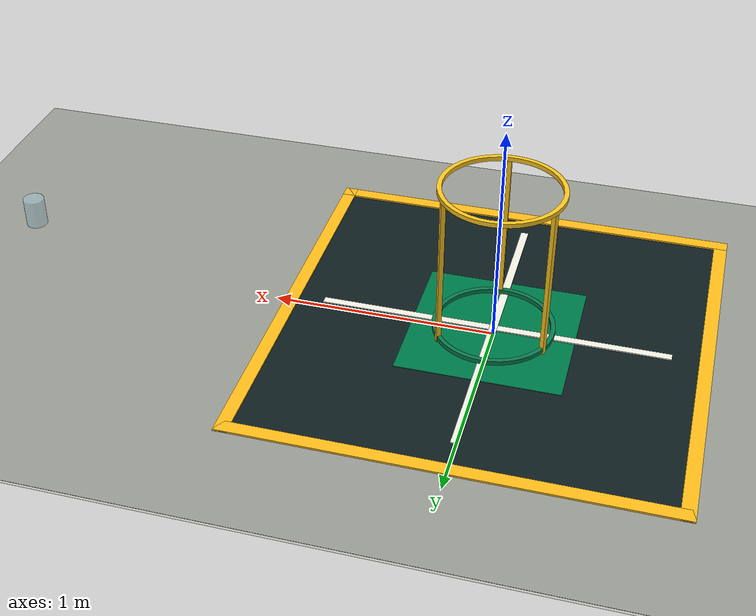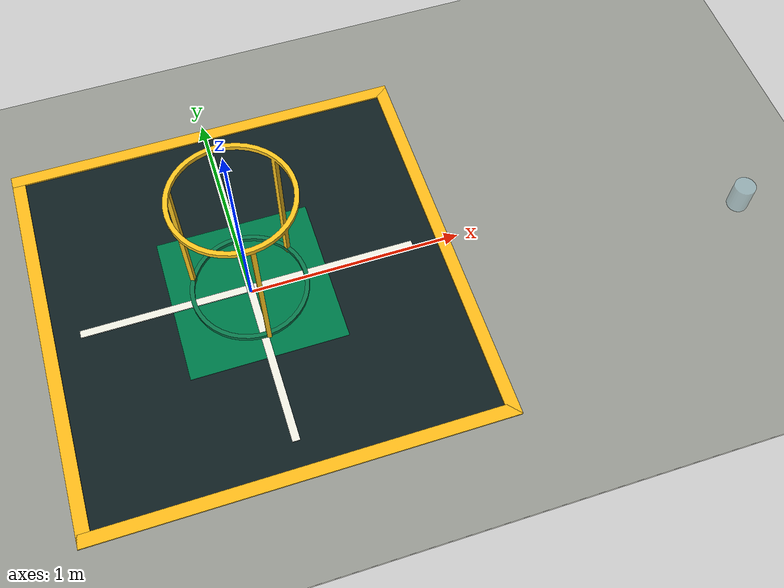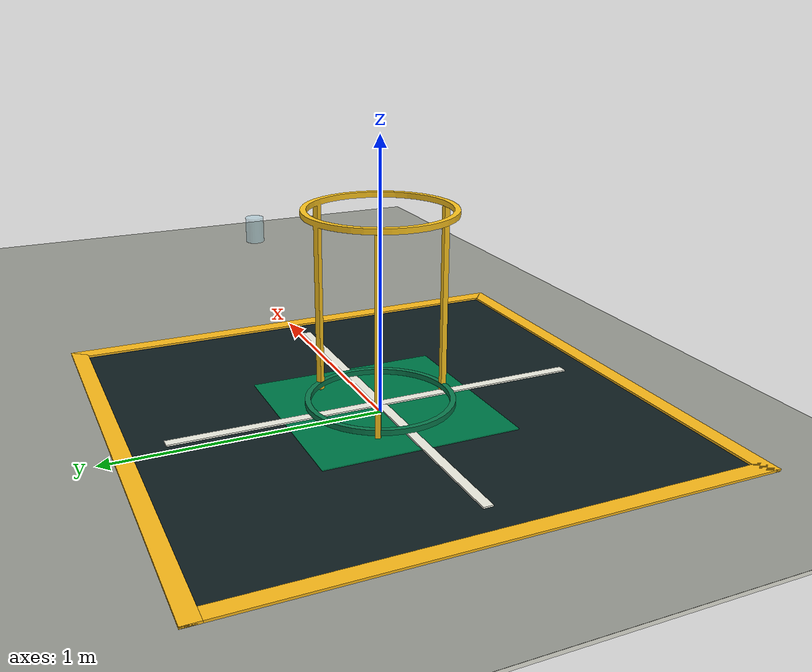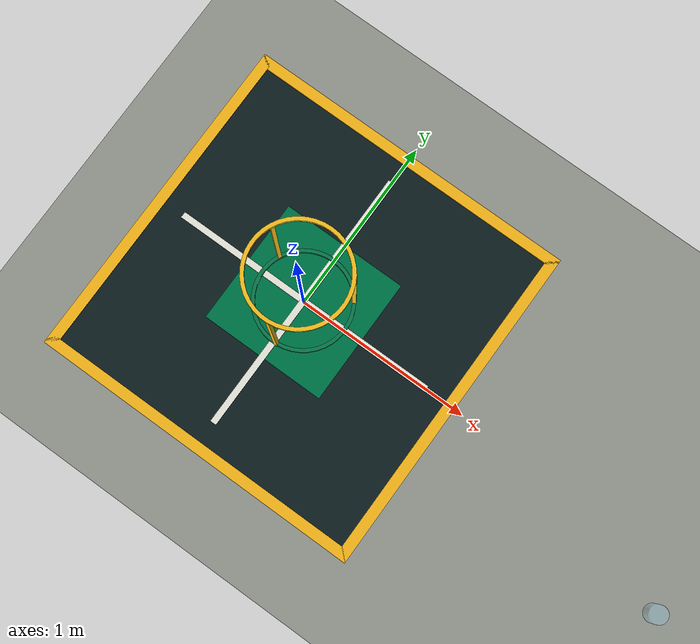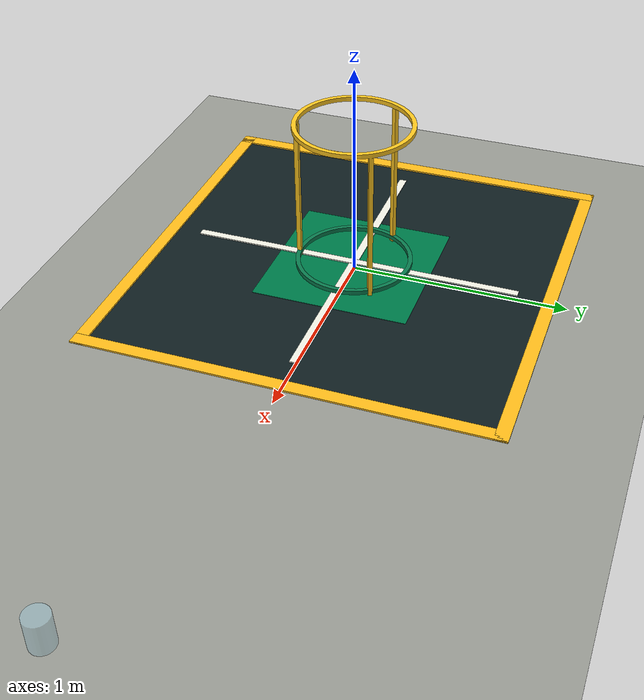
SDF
<sdf version="1.10">
 <world name="laboratory_landingbox_vla_task0">
  <model name="ground_plane">
   <static>true</static>
   <link name="link">
    <collision name="collision">
     <geometry><plane><normal>0 0 1</normal><size>500 500</size></plane></geometry>
     <surface><friction><ode><mu>100</mu><mu2>50</mu2></ode></friction></surface>
    </collision>
    <visual name="visual">
     <geometry><plane><normal>0 0 1</normal><size>500 500</size></plane></geometry>
     <material>
      <ambient>0.74000001 0.74000001 0.699999988 1</ambient>
      <diffuse>0.74000001 0.74000001 0.699999988 1</diffuse>
      <specular>0.0500000007 0.0500000007 0.0500000007 1</specular>
     </material>
    </visual>
    <inertial>
     <mass>1</mass>
     <inertia><ixx>1</ixx><ixy>0</ixy><ixz>0</ixz><iyy>1</iyy><iyz>0</iyz><izz>1</izz></inertia>
    </inertial>
   </link>
  </model>
  <model name="Floor_room">
   <link name="main">
    <pose>0 0 0.01 0 0 0</pose>
    <collision name="main_Collision"><geometry><box><size>28 20 0.001</size></box></geometry></collision>
    <visual name="main_Visual">
     <geometry><box><size>28 20 0.001</size></box></geometry>
     <material>
      <ambient>0.560000002 0.579999983 0.560000002 1</ambient>
      <diffuse>0.600000024 0.610000014 0.579999983 1</diffuse>
      <specular>0.0199999996 0.0199999996 0.0199999996 1</specular>
     </material>
    </visual>
    <inertial>
     <mass>1</mass>
     <inertia><ixx>1</ixx><ixy>0</ixy><ixz>0</ixz><iyy>1</iyy><iyz>0</iyz><izz>1</izz></inertia>
    </inertial>
   </link>
   <static>true</static>
   <pose>0.043797000000000003 -0.01325 0 0 0 0</pose>
  </model>
  <model name="Landing box">
   <static>true</static>
   <link name="base_link">
    <inertial>
     <pose>0 0.0030439999999999998 0.366956 0 0 0</pose>
     <mass>2.1469</mass>
     <inertia>
      <ixx>0.25168299999999999</ixx>
      <ixy>0.0062132300000000001</ixy>
      <ixz>-0.015183</ixz>
      <iyy>0.26891500000000002</iyy>
      <iyz>-0.0079976200000000004</iyz>
      <izz>0.110272</izz>
     </inertia>
    </inertial>
    <collision name="base_link_collision">
     <pose>0 0 0.029999999999999999 0 0 0</pose>
     <geometry><cylinder><length>0.02</length><radius>0.26000000000000001</radius></cylinder></geometry>
    </collision>
    <visual name="base_link_visual">
     <pose>0 0 0.029999999999999999 0 0 0</pose>
     <geometry><mesh><scale>1 1 1</scale><uri>model://landing_box/meshes/base_link.dae</uri></mesh></geometry>
     <material>
      <ambient>0.0199999996 0.239999995 0.159999996 1</ambient>
      <diffuse>0.0299999993 0.479999989 0.300000012 1</diffuse>
      <specular>0.0500000007 0.0500000007 0.0500000007 1</specular>
     </material>
    </visual>
   </link>
   <link name="Link_1">
    <collision name="base_link_fixed_joint_lump__Link_1_collision_1">
     <pose>-0.23516699999999999 0.112679 0.37 1.5708 -5.5511151231257827e-17 2.6179899999999998</pose>
     <geometry><box><size>0.02 0.69999999999999996 0.02</size></box></geometry>
    </collision>
    <visual name="base_link_fixed_joint_lump__Link_1_visual_1">
     <pose>-0.23516699999999999 0.112679 0.02 1.5708 -5.5511151231257827e-17 2.6179899999999998</pose>
     <geometry><mesh><scale>1 1 1</scale><uri>model://landing_box/meshes/Link_1.dae</uri></mesh></geometry>
     <material>
      <ambient>0.949999988 0.680000007 0.100000001 1</ambient>
      <diffuse>1 0.779999971 0.119999997 1</diffuse>
      <specular>0.0500000007 0.0399999991 0.0199999996 1</specular>
     </material>
    </visual>
    <inertial>
     <mass>1</mass>
     <inertia><ixx>1</ixx><ixy>0</ixy><ixz>0</ixz><iyy>1</iyy><iyz>0</iyz><izz>1</izz></inertia>
    </inertial>
   </link>
   <link name="Link_2">
    <collision name="base_link_fixed_joint_lump__Link_2_collision_2">
     <pose>0.02 -0.26000000000000001 0.37 -1.5708 -5.5511151231257827e-17 -1.5708</pose>
     <geometry><box><size>0.02 0.69999999999999996 0.02</size></box></geometry>
    </collision>
    <visual name="base_link_fixed_joint_lump__Link_2_visual_2">
     <pose>0.02 -0.26000000000000001 0.02 -1.5708 -5.5511151231257827e-17 -1.5708</pose>
     <geometry><mesh><scale>1 1 1</scale><uri>model://landing_box/meshes/Link_2.dae</uri></mesh></geometry>
     <material>
      <ambient>0.949999988 0.680000007 0.100000001 1</ambient>
      <diffuse>1 0.779999971 0.119999997 1</diffuse>
      <specular>0.0500000007 0.0399999991 0.0199999996 1</specular>
     </material>
    </visual>
    <inertial>
     <mass>1</mass>
     <inertia><ixx>1</ixx><ixy>0</ixy><ixz>0</ixz><iyy>1</iyy><iyz>0</iyz><izz>1</izz></inertia>
    </inertial>
   </link>
   <link name="Link_3">
    <collision name="base_link_fixed_joint_lump__Link_3_collision_3">
     <pose>0.215167 0.14732100000000001 0.37 1.5708000000000002 -5.5511151231257827e-17 0.52359900000000004</pose>
     <geometry><box><size>0.02 0.69999999999999996 0.02</size></box></geometry>
    </collision>
    <visual name="base_link_fixed_joint_lump__Link_3_visual_3">
     <pose>0.215167 0.14732100000000001 0.02 1.5708000000000002 -5.5511151231257827e-17 0.52359900000000004</pose>
     <geometry><mesh><scale>1 1 1</scale><uri>model://landing_box/meshes/Link_3.dae</uri></mesh></geometry>
     <material>
      <ambient>0.949999988 0.680000007 0.100000001 1</ambient>
      <diffuse>1 0.779999971 0.119999997 1</diffuse>
      <specular>0.0500000007 0.0399999991 0.0199999996 1</specular>
     </material>
    </visual>
    <inertial>
     <mass>1</mass>
     <inertia><ixx>1</ixx><ixy>0</ixy><ixz>0</ixz><iyy>1</iyy><iyz>0</iyz><izz>1</izz></inertia>
    </inertial>
   </link>
   <link name="Link_4">
    <collision name="base_link_fixed_joint_lump__Link_1_collision_4">
     <pose>-0.23516699999999999 0.112679 0.72999999999999998 1.5708 -5.5511151231257827e-17 2.6179899999999998</pose>
     <geometry><box><size>0.02 0.02 0.29999999999999999</size></box></geometry>
    </collision>
    <inertial>
     <mass>1</mass>
     <inertia><ixx>1</ixx><ixy>0</ixy><ixz>0</ixz><iyy>1</iyy><iyz>0</iyz><izz>1</izz></inertia>
    </inertial>
   </link>
   <link name="Link_5">
    <collision name="base_link_fixed_joint_lump__Link_2_collision_5">
     <pose>0.02 -0.26000000000000001 0.72999999999999998 -1.5708 -5.5511151231257827e-17 -1.5708</pose>
     <geometry><box><size>0.02 0.02 0.29999999999999999</size></box></geometry>
    </collision>
    <inertial>
     <mass>1</mass>
     <inertia><ixx>1</ixx><ixy>0</ixy><ixz>0</ixz><iyy>1</iyy><iyz>0</iyz><izz>1</izz></inertia>
    </inertial>
   </link>
   <link name="Link_6">
    <collision name="base_link_fixed_joint_lump__Link_3_collision_6">
     <pose>0.215167 0.14732100000000001 0.72999999999999998 1.5708000000000002 -5.5511151231257827e-17 0.52359900000000004</pose>
     <geometry><box><size>0.02 0.02 0.29999999999999999</size></box></geometry>
    </collision>
    <inertial>
     <mass>1</mass>
     <inertia><ixx>1</ixx><ixy>0</ixy><ixz>0</ixz><iyy>1</iyy><iyz>0</iyz><izz>1</izz></inertia>
    </inertial>
   </link>
   <link name="Link_7">
    <collision name="base_link_fixed_joint_lump__Link_1_collision_7">
     <pose>0.23516699999999999 -0.112679 0.72999999999999998 1.5708 -5.5511151231257827e-17 2.6179899999999998</pose>
     <geometry><box><size>0.02 0.02 0.29999999999999999</size></box></geometry>
    </collision>
    <inertial>
     <mass>1</mass>
     <inertia><ixx>1</ixx><ixy>0</ixy><ixz>0</ixz><iyy>1</iyy><iyz>0</iyz><izz>1</izz></inertia>
    </inertial>
   </link>
   <link name="Link_8">
    <collision name="base_link_fixed_joint_lump__Link_2_collision_8">
     <pose>-0.02 0.26000000000000001 0.72999999999999998 -1.5708 -5.5511151231257827e-17 -1.5708</pose>
     <geometry><box><size>0.02 0.02 0.29999999999999999</size></box></geometry>
    </collision>
    <inertial>
     <mass>1</mass>
     <inertia><ixx>1</ixx><ixy>0</ixy><ixz>0</ixz><iyy>1</iyy><iyz>0</iyz><izz>1</izz></inertia>
    </inertial>
   </link>
   <link name="Link_9">
    <collision name="base_link_fixed_joint_lump__Link_3_collision_9">
     <pose>-0.215167 -0.14732100000000001 0.72999999999999998 1.5708000000000002 -5.5511151231257827e-17 0.52359900000000004</pose>
     <geometry><box><size>0.02 0.02 0.29999999999999999</size></box></geometry>
    </collision>
    <inertial>
     <mass>1</mass>
     <inertia><ixx>1</ixx><ixy>0</ixy><ixz>0</ixz><iyy>1</iyy><iyz>0</iyz><izz>1</izz></inertia>
    </inertial>
   </link>
   <pose>0 0 0.012 0 0 0</pose>
  </model>
  <model name="landing_zone_mat">
   <static>true</static>
   <pose>0 0 0.017999999999999999 0 0 0</pose>
   <link name="link">
    <visual name="visual">
     <geometry><box><size>1.8 1.8 0.0060000000000000001</size></box></geometry>
     <material>
      <ambient>0.0500000007 0.0900000036 0.100000001 1</ambient>
      <diffuse>0.0599999987 0.119999997 0.129999995 1</diffuse>
      <specular>0.0199999996 0.0199999996 0.0199999996 1</specular>
     </material>
     <transparency>0.10000000000000001</transparency>
     <cast_shadows>false</cast_shadows>
    </visual>
    <inertial>
     <mass>1</mass>
     <inertia><ixx>1</ixx><ixy>0</ixy><ixz>0</ixz><iyy>1</iyy><iyz>0</iyz><izz>1</izz></inertia>
    </inertial>
   </link>
  </model>
  <model name="landing_zone_center">
   <static>true</static>
   <pose>0 0 0.024 0 0 0</pose>
   <link name="link">
    <visual name="visual">
     <geometry><box><size>0.71999999999999997 0.71999999999999997 0.0040000000000000001</size></box></geometry>
     <material>
      <ambient>0 0.349999994 0.219999999 1</ambient>
      <diffuse>0 0.600000024 0.360000014 1</diffuse>
      <specular>0.0199999996 0.0199999996 0.0199999996 1</specular>
     </material>
     <transparency>0.17999999999999999</transparency>
     <cast_shadows>false</cast_shadows>
    </visual>
    <inertial>
     <mass>1</mass>
     <inertia><ixx>1</ixx><ixy>0</ixy><ixz>0</ixz><iyy>1</iyy><iyz>0</iyz><izz>1</izz></inertia>
    </inertial>
   </link>
  </model>
  <model name="landing_zone_border_n">
   <static>true</static>
   <pose>0 0.92000000000000004 0.029999999999999999 0 0 0</pose>
   <link name="link">
    <visual name="visual">
     <geometry><box><size>1.8999999999999999 0.059999999999999998 0.0080000000000000002</size></box></geometry>
     <material>
      <ambient>1 0.74000001 0.100000001 1</ambient>
      <diffuse>1 0.74000001 0.100000001 1</diffuse>
      <specular>0.0199999996 0.0199999996 0.0199999996 1</specular>
     </material>
     <cast_shadows>false</cast_shadows>
    </visual>
    <inertial>
     <mass>1</mass>
     <inertia><ixx>1</ixx><ixy>0</ixy><ixz>0</ixz><iyy>1</iyy><iyz>0</iyz><izz>1</izz></inertia>
    </inertial>
   </link>
  </model>
  <model name="landing_zone_border_s">
   <static>true</static>
   <pose>0 -0.92000000000000004 0.029999999999999999 0 0 0</pose>
   <link name="link">
    <visual name="visual">
     <geometry><box><size>1.8999999999999999 0.059999999999999998 0.0080000000000000002</size></box></geometry>
     <material>
      <ambient>1 0.74000001 0.100000001 1</ambient>
      <diffuse>1 0.74000001 0.100000001 1</diffuse>
      <specular>0.0199999996 0.0199999996 0.0199999996 1</specular>
     </material>
     <cast_shadows>false</cast_shadows>
    </visual>
    <inertial>
     <mass>1</mass>
     <inertia><ixx>1</ixx><ixy>0</ixy><ixz>0</ixz><iyy>1</iyy><iyz>0</iyz><izz>1</izz></inertia>
    </inertial>
   </link>
  </model>
  <model name="landing_zone_border_e">
   <static>true</static>
   <pose>0.92000000000000004 0 0.029999999999999999 0 0 0</pose>
   <link name="link">
    <visual name="visual">
     <geometry><box><size>0.059999999999999998 1.8999999999999999 0.0080000000000000002</size></box></geometry>
     <material>
      <ambient>1 0.74000001 0.100000001 1</ambient>
      <diffuse>1 0.74000001 0.100000001 1</diffuse>
      <specular>0.0199999996 0.0199999996 0.0199999996 1</specular>
     </material>
     <cast_shadows>false</cast_shadows>
    </visual>
    <inertial>
     <mass>1</mass>
     <inertia><ixx>1</ixx><ixy>0</ixy><ixz>0</ixz><iyy>1</iyy><iyz>0</iyz><izz>1</izz></inertia>
    </inertial>
   </link>
  </model>
  <model name="landing_zone_border_w">
   <static>true</static>
   <pose>-0.92000000000000004 0 0.029999999999999999 0 0 0</pose>
   <link name="link">
    <visual name="visual">
     <geometry><box><size>0.059999999999999998 1.8999999999999999 0.0080000000000000002</size></box></geometry>
     <material>
      <ambient>1 0.74000001 0.100000001 1</ambient>
      <diffuse>1 0.74000001 0.100000001 1</diffuse>
      <specular>0.0199999996 0.0199999996 0.0199999996 1</specular>
     </material>
     <cast_shadows>false</cast_shadows>
    </visual>
    <inertial>
     <mass>1</mass>
     <inertia><ixx>1</ixx><ixy>0</ixy><ixz>0</ixz><iyy>1</iyy><iyz>0</iyz><izz>1</izz></inertia>
    </inertial>
   </link>
  </model>
  <model name="clearance_mark_x">
   <static>true</static>
   <pose>0 0 0.034000000000000002 0 0 0</pose>
   <link name="link">
    <visual name="visual">
     <geometry><box><size>1.55 0.035000000000000003 0.0060000000000000001</size></box></geometry>
     <material>
      <ambient>0.949999988 0.949999988 0.899999976 1</ambient>
      <diffuse>0.949999988 0.949999988 0.899999976 1</diffuse>
      <specular>0.0199999996 0.0199999996 0.0199999996 1</specular>
     </material>
     <transparency>0.050000000000000003</transparency>
     <cast_shadows>false</cast_shadows>
    </visual>
    <inertial>
     <mass>1</mass>
     <inertia><ixx>1</ixx><ixy>0</ixy><ixz>0</ixz><iyy>1</iyy><iyz>0</iyz><izz>1</izz></inertia>
    </inertial>
   </link>
  </model>
  <model name="clearance_mark_y">
   <static>true</static>
   <pose>0 0 0.035000000000000003 0 0 0</pose>
   <link name="link">
    <visual name="visual">
     <geometry><box><size>0.035000000000000003 1.55 0.0060000000000000001</size></box></geometry>
     <material>
      <ambient>0.949999988 0.949999988 0.899999976 1</ambient>
      <diffuse>0.949999988 0.949999988 0.899999976 1</diffuse>
      <specular>0.0199999996 0.0199999996 0.0199999996 1</specular>
     </material>
     <transparency>0.050000000000000003</transparency>
     <cast_shadows>false</cast_shadows>
    </visual>
    <inertial>
     <mass>1</mass>
     <inertia><ixx>1</ixx><ixy>0</ixy><ixz>0</ixz><iyy>1</iyy><iyz>0</iyz><izz>1</izz></inertia>
    </inertial>
   </link>
  </model>
  <model name="vla_object_A_transparent_cup">
   <static>false</static>
   <pose>2.3300000000000001 -0.25 0.089347841624066615 -9.9065911472491254e-18 -3.27675866494502e-17 6.6695903858798392e-17</pose>
   <link name="link">
    <inertial>
     <mass>0.059999999999999998</mass>
     <inertia><ixx>0.00012</ixx><iyy>0.00012</iyy><izz>0.00012</izz><ixy>0</ixy><ixz>0</ixz><iyz>0</iyz></inertia>
    </inertial>
    <collision name="collision">
     <geometry>
      <cylinder><radius>0.050000000000000003</radius><length>0.14000000000000001</length></cylinder>
     </geometry>
    </collision>
    <visual name="visual">
     <geometry>
      <cylinder><radius>0.050000000000000003</radius><length>0.14000000000000001</length></cylinder>
     </geometry>
     <material>
      <ambient>0.600000024 0.850000024 0.949999988 0.349999994</ambient>
      <diffuse>0.600000024 0.850000024 0.949999988 0.349999994</diffuse>
      <specular>0.25 0.25 0.25 1</specular>
     </material>
     <transparency>0.55000000000000004</transparency>
     <cast_shadows>false</cast_shadows>
    </visual>
   </link>
  </model>
 </world>
</sdf>
